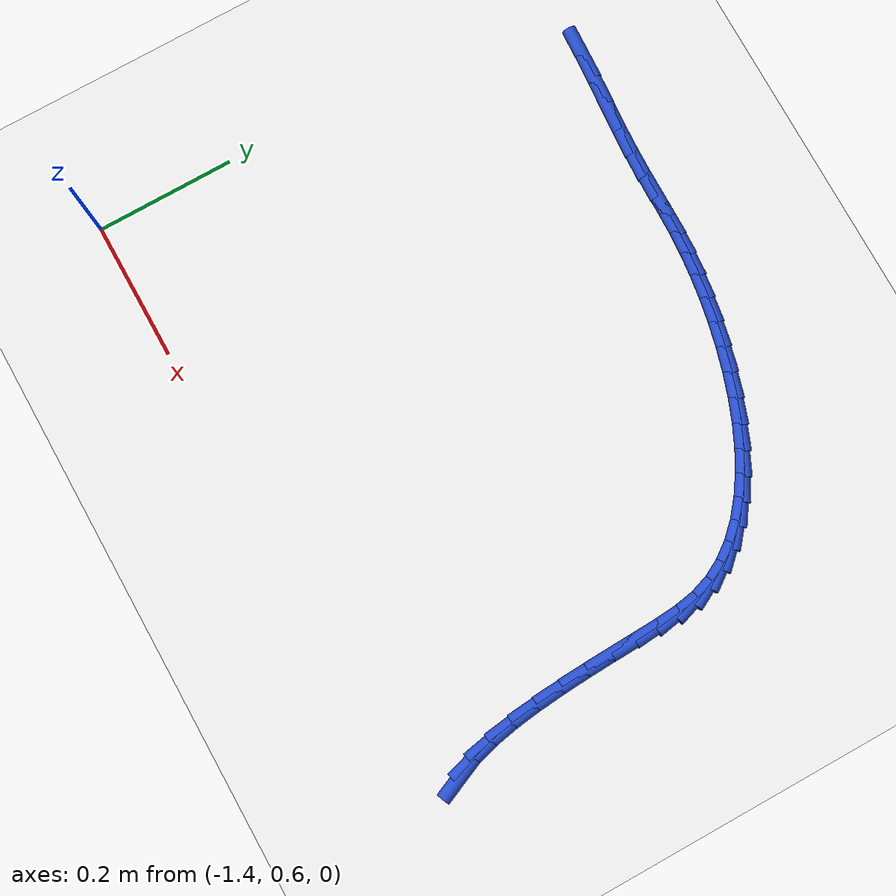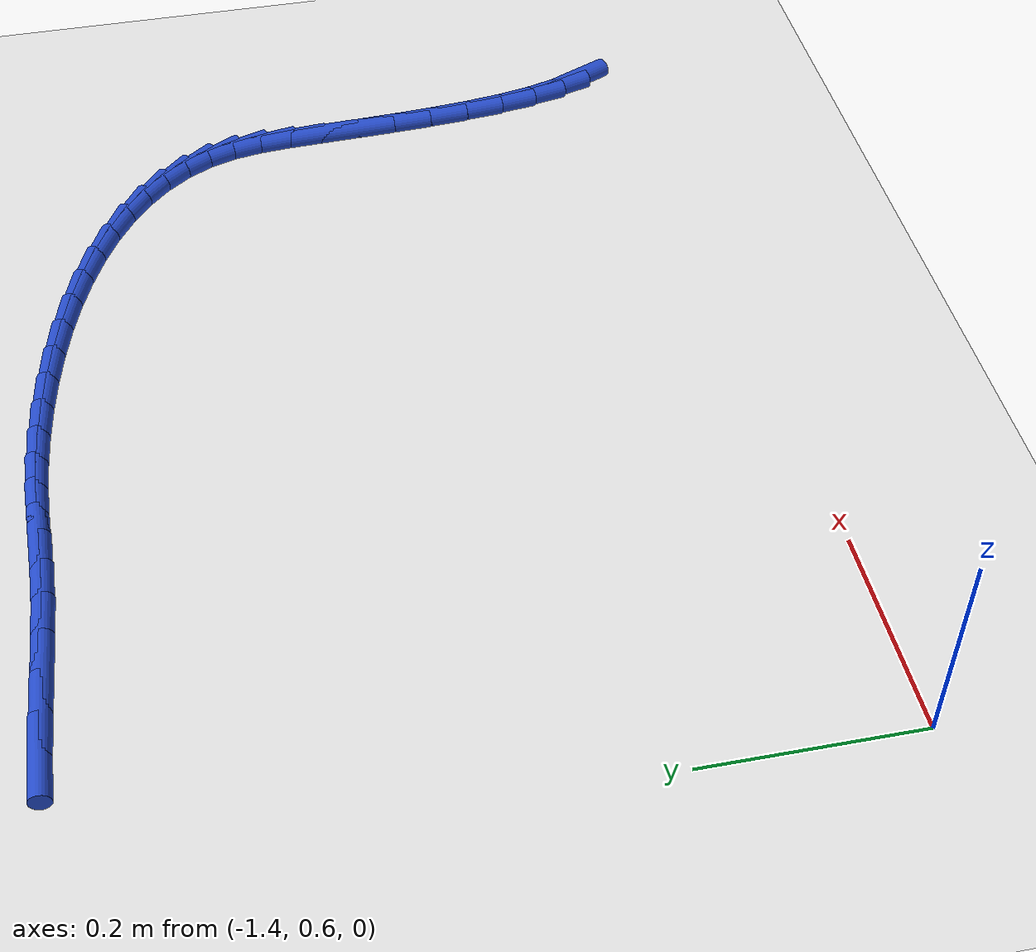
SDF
<sdf version="1.6">
 <world name="default">
  <model name="ground_plane">
   <static>1</static>
   <link name="link">
    <collision name="collision">
     <geometry><plane><normal>0 0 1</normal><size>100 100</size></plane></geometry>
     <surface><friction><ode><mu>100</mu><mu2>50</mu2></ode></friction></surface>
    </collision>
    <visual name="visual">
     <cast_shadows>0</cast_shadows>
     <geometry><plane><normal>0 0 1</normal><size>100 100</size></plane></geometry>
     <material>
      <script><uri>file://media/materials/scripts/gazebo.material</uri><name>Gazebo/WhiteGlow</name></script>
     </material>
    </visual>
   </link>
  </model>
  <model name="line">
   <link name="link_39">
    <pose>-0.5187860987987545 0.6775668907376597 0.01 0 1.57 -1.1609179245999288</pose>
    <collision name="collision">
     <geometry><cylinder><radius>0.01</radius><length>0.08</length></cylinder></geometry>
    </collision>
    <visual name="visual">
     <material>
      <script><name>Gazebo/Blue</name><uri>file://media/materials/scripts/gazebo.material</uri></script>
     </material>
     <geometry><cylinder><radius>0.01</radius><length>0.08</length></cylinder></geometry>
    </visual>
   </link>
   <link name="link_40">
    <pose>-0.52970500794141 0.702697488631128 0.01 0 1.57 -1.2973700963170323</pose>
    <collision name="collision">
     <geometry><cylinder><radius>0.01</radius><length>0.08</length></cylinder></geometry>
    </collision>
    <visual name="visual">
     <material>
      <script><name>Gazebo/Blue</name><uri>file://media/materials/scripts/gazebo.material</uri></script>
     </material>
     <geometry><cylinder><radius>0.01</radius><length>0.08</length></cylinder></geometry>
    </visual>
   </link>
   <link name="link_41">
    <pose>-0.538307524326624 0.7333714296086851 0.01 0 1.57 -1.3841726923106685</pose>
    <collision name="collision">
     <geometry><cylinder><radius>0.01</radius><length>0.08</length></cylinder></geometry>
    </collision>
    <visual name="visual">
     <material>
      <script><name>Gazebo/Blue</name><uri>file://media/materials/scripts/gazebo.material</uri></script>
     </material>
     <geometry><cylinder><radius>0.01</radius><length>0.08</length></cylinder></geometry>
    </visual>
   </link>
   <link name="link_42">
    <pose>-0.5449137953606028 0.7683584082933431 0.01 0 1.57 -1.4420092853491449</pose>
    <collision name="collision">
     <geometry><cylinder><radius>0.01</radius><length>0.08</length></cylinder></geometry>
    </collision>
    <visual name="visual">
     <material>
      <script><name>Gazebo/Blue</name><uri>file://media/materials/scripts/gazebo.material</uri></script>
     </material>
     <geometry><cylinder><radius>0.01</radius><length>0.08</length></cylinder></geometry>
    </visual>
   </link>
   <link name="link_43">
    <pose>-0.5498439684495531 0.8064281193081151 0.01 0 1.57 -1.4815045563050857</pose>
    <collision name="collision">
     <geometry><cylinder><radius>0.01</radius><length>0.08</length></cylinder></geometry>
    </collision>
    <visual name="visual">
     <material>
      <script><name>Gazebo/Blue</name><uri>file://media/materials/scripts/gazebo.material</uri></script>
     </material>
     <geometry><cylinder><radius>0.01</radius><length>0.08</length></cylinder></geometry>
    </visual>
   </link>
   <link name="link_44">
    <pose>-0.5534181909996813 0.8463502572760144 0.01 0 1.57 -1.5082693379018786</pose>
    <collision name="collision">
     <geometry><cylinder><radius>0.01</radius><length>0.08</length></cylinder></geometry>
    </collision>
    <visual name="visual">
     <material>
      <script><name>Gazebo/Blue</name><uri>file://media/materials/scripts/gazebo.material</uri></script>
     </material>
     <geometry><cylinder><radius>0.01</radius><length>0.08</length></cylinder></geometry>
    </visual>
   </link>
   <link name="link_45">
    <pose>-0.5559566104171938 0.8868945168200535 0.01 0 1.57 -1.525185947890008</pose>
    <collision name="collision">
     <geometry><cylinder><radius>0.01</radius><length>0.08</length></cylinder></geometry>
    </collision>
    <visual name="visual">
     <material>
      <script><name>Gazebo/Blue</name><uri>file://media/materials/scripts/gazebo.material</uri></script>
     </material>
     <geometry><cylinder><radius>0.01</radius><length>0.08</length></cylinder></geometry>
    </visual>
   </link>
   <link name="link_46">
    <pose>-0.5577793741082971 0.9268305925632453 0.01 0 1.57 -1.5333506944150765</pose>
    <collision name="collision">
     <geometry><cylinder><radius>0.01</radius><length>0.08</length></cylinder></geometry>
    </collision>
    <visual name="visual">
     <material>
      <script><name>Gazebo/Blue</name><uri>file://media/materials/scripts/gazebo.material</uri></script>
     </material>
     <geometry><cylinder><radius>0.01</radius><length>0.08</length></cylinder></geometry>
    </visual>
   </link>
   <link name="link_47">
    <pose>-0.5592066294791979 0.9649281791286026 0.01 0 1.57 -1.5299484255990445</pose>
    <collision name="collision">
     <geometry><cylinder><radius>0.01</radius><length>0.08</length></cylinder></geometry>
    </collision>
    <visual name="visual">
     <material>
      <script><name>Gazebo/Blue</name><uri>file://media/materials/scripts/gazebo.material</uri></script>
     </material>
     <geometry><cylinder><radius>0.01</radius><length>0.08</length></cylinder></geometry>
    </visual>
   </link>
   <link name="link_48">
    <pose>-0.5606433944602222 1.0000821465259646 0.01 0 1.57 -1.4914541092336222</pose>
    <collision name="collision">
     <geometry><cylinder><radius>0.01</radius><length>0.08</length></cylinder></geometry>
    </collision>
    <visual name="visual">
     <material>
      <script><name>Gazebo/Blue</name><uri>file://media/materials/scripts/gazebo.material</uri></script>
     </material>
     <geometry><cylinder><radius>0.01</radius><length>0.08</length></cylinder></geometry>
    </visual>
   </link>
   <link name="link_49">
    <pose>-0.5631991547111065 1.032226382980859 0.01 0 1.57 -1.3989947967397172</pose>
    <collision name="collision">
     <geometry><cylinder><radius>0.01</radius><length>0.08</length></cylinder></geometry>
    </collision>
    <visual name="visual">
     <material>
      <script><name>Gazebo/Blue</name><uri>file://media/materials/scripts/gazebo.material</uri></script>
     </material>
     <geometry><cylinder><radius>0.01</radius><length>0.08</length></cylinder></geometry>
    </visual>
   </link>
   <link name="link_50">
    <pose>-0.5683321106896472 1.0618090955614503 0.01 0 1.57 -1.2503103855909325</pose>
    <collision name="collision">
     <geometry><cylinder><radius>0.01</radius><length>0.08</length></cylinder></geometry>
    </collision>
    <visual name="visual">
     <material>
      <script><name>Gazebo/Blue</name><uri>file://media/materials/scripts/gazebo.material</uri></script>
     </material>
     <geometry><cylinder><radius>0.01</radius><length>0.08</length></cylinder></geometry>
    </visual>
   </link>
   <link name="link_51">
    <pose>-0.57744703484086 1.0892695755860515 0.01 0 1.57 -1.0839318996817784</pose>
    <collision name="collision">
     <geometry><cylinder><radius>0.01</radius><length>0.08</length></cylinder></geometry>
    </collision>
    <visual name="visual">
     <material>
      <script><name>Gazebo/Blue</name><uri>file://media/materials/scripts/gazebo.material</uri></script>
     </material>
     <geometry><cylinder><radius>0.01</radius><length>0.08</length></cylinder></geometry>
    </visual>
   </link>
   <link name="link_52">
    <pose>-0.5909770361302555 1.1148283958891256 0.01 0 1.57 -0.9331206349444616</pose>
    <collision name="collision">
     <geometry><cylinder><radius>0.01</radius><length>0.08</length></cylinder></geometry>
    </collision>
    <visual name="visual">
     <material>
      <script><name>Gazebo/Blue</name><uri>file://media/materials/scripts/gazebo.material</uri></script>
     </material>
     <geometry><cylinder><radius>0.01</radius><length>0.08</length></cylinder></geometry>
    </visual>
   </link>
   <link name="link_53">
    <pose>-0.6085315673398851 1.1385207268119244 0.01 0 1.57 -0.8014993310196985</pose>
    <collision name="collision">
     <geometry><cylinder><radius>0.01</radius><length>0.08</length></cylinder></geometry>
    </collision>
    <visual name="visual">
     <material>
      <script><name>Gazebo/Blue</name><uri>file://media/materials/scripts/gazebo.material</uri></script>
     </material>
     <geometry><cylinder><radius>0.01</radius><length>0.08</length></cylinder></geometry>
    </visual>
   </link>
   <link name="link_54">
    <pose>-0.6296940193642089 1.1603758722443411 0.01 0 1.57 -0.6887096014754508</pose>
    <collision name="collision">
     <geometry><cylinder><radius>0.01</radius><length>0.08</length></cylinder></geometry>
    </collision>
    <visual name="visual">
     <material>
      <script><name>Gazebo/Blue</name><uri>file://media/materials/scripts/gazebo.material</uri></script>
     </material>
     <geometry><cylinder><radius>0.01</radius><length>0.08</length></cylinder></geometry>
    </visual>
   </link>
   <link name="link_55">
    <pose>-0.6540477830976876 1.180423136076269 0.01 0 1.57 -0.5926592251216902</pose>
    <collision name="collision">
     <geometry><cylinder><radius>0.01</radius><length>0.08</length></cylinder></geometry>
    </collision>
    <visual name="visual">
     <material>
      <script><name>Gazebo/Blue</name><uri>file://media/materials/scripts/gazebo.material</uri></script>
     </material>
     <geometry><cylinder><radius>0.01</radius><length>0.08</length></cylinder></geometry>
    </visual>
   </link>
   <link name="link_56">
    <pose>-0.6811762494347813 1.1986918221976015 0.01 0 1.57 -0.5106674456410758</pose>
    <collision name="collision">
     <geometry><cylinder><radius>0.01</radius><length>0.08</length></cylinder></geometry>
    </collision>
    <visual name="visual">
     <material>
      <script><name>Gazebo/Blue</name><uri>file://media/materials/scripts/gazebo.material</uri></script>
     </material>
     <geometry><cylinder><radius>0.01</radius><length>0.08</length></cylinder></geometry>
    </visual>
   </link>
   <link name="link_57">
    <pose>-0.7106628092699502 1.2152112344982313 0.01 0 1.57 -0.4400971768349035</pose>
    <collision name="collision">
     <geometry><cylinder><radius>0.01</radius><length>0.08</length></cylinder></geometry>
    </collision>
    <visual name="visual">
     <material>
      <script><name>Gazebo/Blue</name><uri>file://media/materials/scripts/gazebo.material</uri></script>
     </material>
     <geometry><cylinder><radius>0.01</radius><length>0.08</length></cylinder></geometry>
    </visual>
   </link>
   <link name="link_58">
    <pose>-0.7420908534976549 1.2300106768680519 0.01 0 1.57 -0.37861113742076613</pose>
    <collision name="collision">
     <geometry><cylinder><radius>0.01</radius><length>0.08</length></cylinder></geometry>
    </collision>
    <visual name="visual">
     <material>
      <script><name>Gazebo/Blue</name><uri>file://media/materials/scripts/gazebo.material</uri></script>
     </material>
     <geometry><cylinder><radius>0.01</radius><length>0.08</length></cylinder></geometry>
    </visual>
   </link>
   <link name="link_59">
    <pose>-0.7750437730123558 1.243119453196956 0.01 0 1.57 -0.3242239668933238</pose>
    <collision name="collision">
     <geometry><cylinder><radius>0.01</radius><length>0.08</length></cylinder></geometry>
    </collision>
    <visual name="visual">
     <material>
      <script><name>Gazebo/Blue</name><uri>file://media/materials/scripts/gazebo.material</uri></script>
     </material>
     <geometry><cylinder><radius>0.01</radius><length>0.08</length></cylinder></geometry>
    </visual>
   </link>
   <link name="link_60">
    <pose>-0.809104958708513 1.2545668673748376 0.01 0 1.57 -0.2752635623198393</pose>
    <collision name="collision">
     <geometry><cylinder><radius>0.01</radius><length>0.08</length></cylinder></geometry>
    </collision>
    <visual name="visual">
     <material>
      <script><name>Gazebo/Blue</name><uri>file://media/materials/scripts/gazebo.material</uri></script>
     </material>
     <geometry><cylinder><radius>0.01</radius><length>0.08</length></cylinder></geometry>
    </visual>
   </link>
   <link name="link_61">
    <pose>-0.8438578014805871 1.2643822232915887 0.01 0 1.57 -0.2302991390069512</pose>
    <collision name="collision">
     <geometry><cylinder><radius>0.01</radius><length>0.08</length></cylinder></geometry>
    </collision>
    <visual name="visual">
     <material>
      <script><name>Gazebo/Blue</name><uri>file://media/materials/scripts/gazebo.material</uri></script>
     </material>
     <geometry><cylinder><radius>0.01</radius><length>0.08</length></cylinder></geometry>
    </visual>
   </link>
   <link name="link_62">
    <pose>-0.8788856922230381 1.2725948248371037 0.01 0 1.57 -0.18805929373507083</pose>
    <collision name="collision">
     <geometry><cylinder><radius>0.01</radius><length>0.08</length></cylinder></geometry>
    </collision>
    <visual name="visual">
     <material>
      <script><name>Gazebo/Blue</name><uri>file://media/materials/scripts/gazebo.material</uri></script>
     </material>
     <geometry><cylinder><radius>0.01</radius><length>0.08</length></cylinder></geometry>
    </visual>
   </link>
   <link name="link_63">
    <pose>-0.9137720218303266 1.2792339759012747 0.01 0 1.57 -0.1473449015706178</pose>
    <collision name="collision">
     <geometry><cylinder><radius>0.01</radius><length>0.08</length></cylinder></geometry>
    </collision>
    <visual name="visual">
     <material>
      <script><name>Gazebo/Blue</name><uri>file://media/materials/scripts/gazebo.material</uri></script>
     </material>
     <geometry><cylinder><radius>0.01</radius><length>0.08</length></cylinder></geometry>
    </visual>
   </link>
   <link name="link_64">
    <pose>-0.9481001811969129 1.284328980373996 0.01 0 1.57 -0.10693086921144568</pose>
    <collision name="collision">
     <geometry><cylinder><radius>0.01</radius><length>0.08</length></cylinder></geometry>
    </collision>
    <visual name="visual">
     <material>
      <script><name>Gazebo/Blue</name><uri>file://media/materials/scripts/gazebo.material</uri></script>
     </material>
     <geometry><cylinder><radius>0.01</radius><length>0.08</length></cylinder></geometry>
    </visual>
   </link>
   <link name="link_65">
    <pose>-0.981453561217257 1.2879091421451596 0.01 0 1.57 -0.06549317366335013</pose>
    <collision name="collision">
     <geometry><cylinder><radius>0.01</radius><length>0.08</length></cylinder></geometry>
    </collision>
    <visual name="visual">
     <material>
      <script><name>Gazebo/Blue</name><uri>file://media/materials/scripts/gazebo.material</uri></script>
     </material>
     <geometry><cylinder><radius>0.01</radius><length>0.08</length></cylinder></geometry>
    </visual>
   </link>
   <link name="link_66">
    <pose>-1.0134207095680028 1.2900057707298467 0.01 0 1.57 -0.02750333178696695</pose>
    <collision name="collision">
     <geometry><cylinder><radius>0.01</radius><length>0.08</length></cylinder></geometry>
    </collision>
    <visual name="visual">
     <material>
      <script><name>Gazebo/Blue</name><uri>file://media/materials/scripts/gazebo.material</uri></script>
     </material>
     <geometry><cylinder><radius>0.01</radius><length>0.08</length></cylinder></geometry>
    </visual>
   </link>
   <link name="link_67">
    <pose>-1.0441036084489705 1.2908498655224814 0.01 0 1.57 -0.0062141048390428645</pose>
    <collision name="collision">
     <geometry><cylinder><radius>0.01</radius><length>0.08</length></cylinder></geometry>
    </collision>
    <visual name="visual">
     <material>
      <script><name>Gazebo/Blue</name><uri>file://media/materials/scripts/gazebo.material</uri></script>
     </material>
     <geometry><cylinder><radius>0.01</radius><length>0.08</length></cylinder></geometry>
    </visual>
   </link>
   <link name="link_68">
    <pose>-1.0745468777904277 1.2910390456248881 0.01 0 1.57 -0.0054606861997451885</pose>
    <collision name="collision">
     <geometry><cylinder><radius>0.01</radius><length>0.08</length></cylinder></geometry>
    </collision>
    <visual name="visual">
     <material>
      <script><name>Gazebo/Blue</name><uri>file://media/materials/scripts/gazebo.material</uri></script>
     </material>
     <geometry><cylinder><radius>0.01</radius><length>0.08</length></cylinder></geometry>
    </visual>
   </link>
   <link name="link_69">
    <pose>-1.1058961995063756 1.2912102361349391 0.01 0 1.57 -0.023651308566772233</pose>
    <collision name="collision">
     <geometry><cylinder><radius>0.01</radius><length>0.08</length></cylinder></geometry>
    </collision>
    <visual name="visual">
     <material>
      <script><name>Gazebo/Blue</name><uri>file://media/materials/scripts/gazebo.material</uri></script>
     </material>
     <geometry><cylinder><radius>0.01</radius><length>0.08</length></cylinder></geometry>
    </visual>
   </link>
   <link name="link_70">
    <pose>-1.1392972555108176 1.2920003621505056 0.01 0 1.57 -0.05329321475483819</pose>
    <collision name="collision">
     <geometry><cylinder><radius>0.01</radius><length>0.08</length></cylinder></geometry>
    </collision>
    <visual name="visual">
     <material>
      <script><name>Gazebo/Blue</name><uri>file://media/materials/scripts/gazebo.material</uri></script>
     </material>
     <geometry><cylinder><radius>0.01</radius><length>0.08</length></cylinder></geometry>
    </visual>
   </link>
   <link name="link_71">
    <pose>-1.1757144748370885 1.2939429923203563 0.01 0 1.57 -0.07293361830226928</pose>
    <collision name="collision">
     <geometry><cylinder><radius>0.01</radius><length>0.08</length></cylinder></geometry>
    </collision>
    <visual name="visual">
     <material>
      <script><name>Gazebo/Blue</name><uri>file://media/materials/scripts/gazebo.material</uri></script>
     </material>
     <geometry><cylinder><radius>0.01</radius><length>0.08</length></cylinder></geometry>
    </visual>
   </link>
   <link name="link_72">
    <pose>-1.2147503604570982 1.2967950795444112 0.01 0 1.57 -0.07773520650017757</pose>
    <collision name="collision">
     <geometry><cylinder><radius>0.01</radius><length>0.08</length></cylinder></geometry>
    </collision>
    <visual name="visual">
     <material>
      <script><name>Gazebo/Blue</name><uri>file://media/materials/scripts/gazebo.material</uri></script>
     </material>
     <geometry><cylinder><radius>0.01</radius><length>0.08</length></cylinder></geometry>
    </visual>
   </link>
   <link name="link_73">
    <pose>-1.255388137803182 1.2999604439764285 0.01 0 1.57 -0.06977254398684012</pose>
    <collision name="collision">
     <geometry><cylinder><radius>0.01</radius><length>0.08</length></cylinder></geometry>
    </collision>
    <visual name="visual">
     <material>
      <script><name>Gazebo/Blue</name><uri>file://media/materials/scripts/gazebo.material</uri></script>
     </material>
     <geometry><cylinder><radius>0.01</radius><length>0.08</length></cylinder></geometry>
    </visual>
   </link>
   <link name="link_74">
    <pose>-1.2966079162502422 1.3028411288900956 0.01 0 1.57 -0.04895438484107478</pose>
    <collision name="collision">
     <geometry><cylinder><radius>0.01</radius><length>0.08</length></cylinder></geometry>
    </collision>
    <visual name="visual">
     <material>
      <script><name>Gazebo/Blue</name><uri>file://media/materials/scripts/gazebo.material</uri></script>
     </material>
     <geometry><cylinder><radius>0.01</radius><length>0.08</length></cylinder></geometry>
    </visual>
   </link>
  </model>
 </world>
</sdf>
